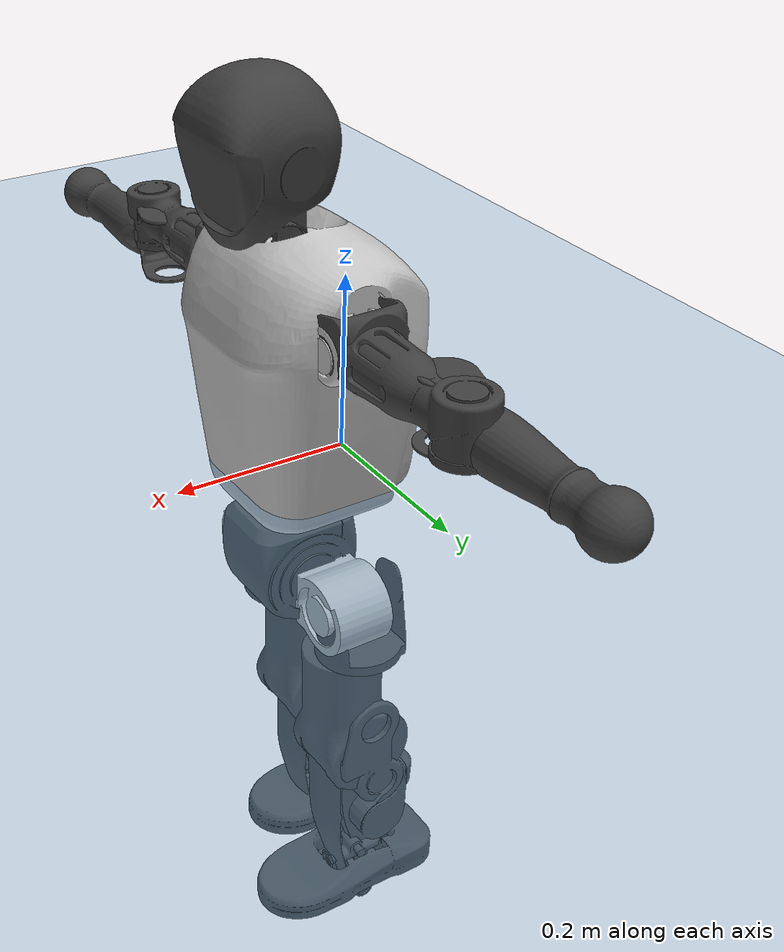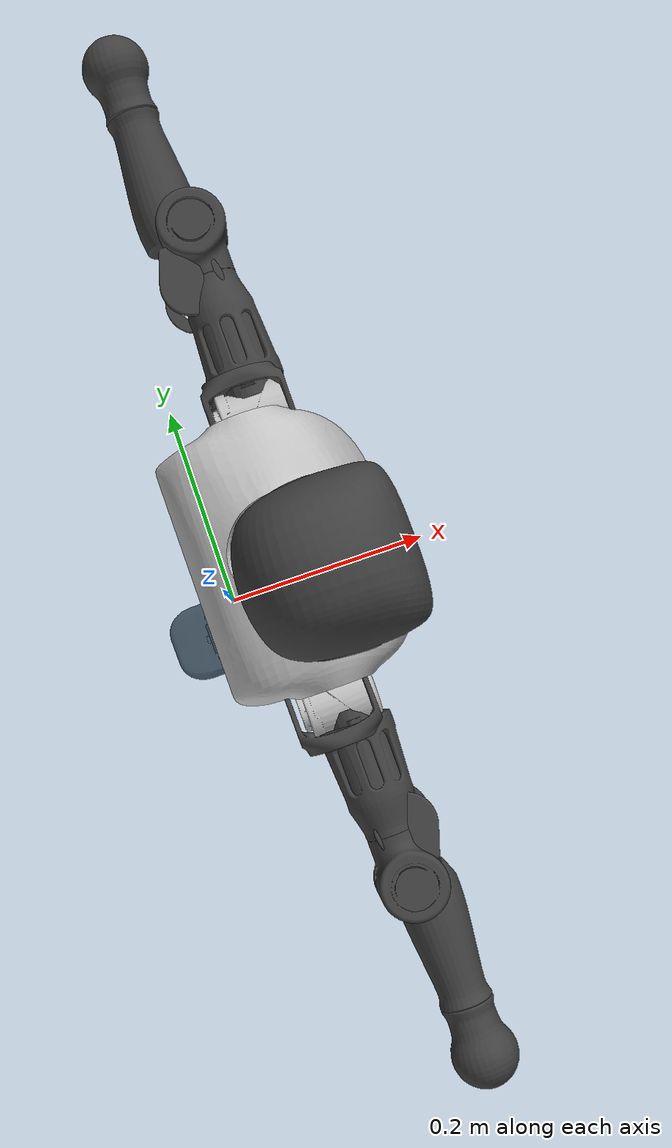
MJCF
<mujoco model="T1">
  <compiler angle="radian" assetdir="assets" balanceinertia="true" inertiafromgeom="false"/>

  <option timestep="0.005" density="1.2" viscosity="2e-05"/>

  <size nkey="1"/>

  <visual>
    <quality shadowsize="8192"/>
    <map shadowclip="0.5"/>
  </visual>

  <default>
    <default class="/">
      <joint armature="0.01" damping="0.01" frictionloss="0.1"/>
      <geom contype="0" conaffinity="0" group="1" solref="-1000 -80"/>
      <site size="0.01 0.005 0.005" group="5"/>
      <general forcelimited="true" biastype="affine" gainprm="25" biasprm="0 -25 -0.6"/>
      <default class="t1">
        <geom rgba="0.25 0.25 0.25 1"/>
        <default class="visual">
          <geom type="mesh" group="2"/>
        </default>
        <default class="collision">
          <geom group="3"/>
        </default>
        <default class="foot">
          <geom size="0.1115 0.05 0.015" type="box" condim="6" group="4" priority="1" solimp="0.015 1 0.015"/>
        </default>
        <default class="reward_collision_sphere">
          <geom group="5" rgba="1 0 0 1"/>
        </default>
      </default>
    </default>
  </default>

  <asset>
    <texture type="skybox" colorspace="auto" name="//unnamed_texture_0" builtin="gradient" rgb1="0.95 0.95 0.95" rgb2="0.95 0.95 0.95" width="100" height="600"/>
    <texture type="2d" colorspace="auto" name="texplane" builtin="checker" rgb1="0.345 0.575 0.748" rgb2="0.345 0.575 0.748" markrgb="1 1 1" width="512" height="512"/>
    <material name="MatPlane" class="/" texture="texplane" texuniform="true" texrepeat="2 2" specular="0.9"/>
    <mesh name="Trunk" class="/" file="Trunk.stl"/>
    <mesh name="H1" class="/" file="H1.stl"/>
    <mesh name="H2" class="/" file="H2.stl"/>
    <mesh name="AL1" class="/" file="AL1.stl"/>
    <mesh name="AL2" class="/" file="AL2.stl"/>
    <mesh name="AL3" class="/" file="AL3.stl"/>
    <mesh name="left_hand_link" class="/" file="left_hand_link.stl"/>
    <mesh name="AR1" class="/" file="AR1.stl"/>
    <mesh name="AR2" class="/" file="AR2.stl"/>
    <mesh name="AR3" class="/" file="AR3.stl"/>
    <mesh name="right_hand_link" class="/" file="right_hand_link.stl"/>
    <mesh name="Waist" class="/" file="Waist.stl"/>
    <mesh name="Hip_Pitch_Left" class="/" file="Hip_Pitch_Left.stl"/>
    <mesh name="Hip_Roll_Left" class="/" file="Hip_Roll_Left.stl"/>
    <mesh name="Hip_Yaw_Left" class="/" file="Hip_Yaw_Left.stl"/>
    <mesh name="Shank_Left" class="/" file="Shank_Left.stl"/>
    <mesh name="Ankle_Cross_Left" class="/" file="Ankle_Cross_Left.stl"/>
    <mesh name="left_foot_link" class="/" file="left_foot_link.stl"/>
    <mesh name="Hip_Pitch_Right" class="/" file="Hip_Pitch_Right.stl"/>
    <mesh name="Hip_Roll_Right" class="/" file="Hip_Roll_Right.stl"/>
    <mesh name="Hip_Yaw_Right" class="/" file="Hip_Yaw_Right.stl"/>
    <mesh name="Shank_Right" class="/" file="Shank_Right.stl"/>
    <mesh name="Ankle_Cross_Right" class="/" file="Ankle_Cross_Right.stl"/>
    <mesh name="right_foot_link" class="/" file="right_foot_link.stl"/>
  </asset>

  <worldbody>
    <geom name="floor" class="/" size="100 100 0.125" type="plane" group="0" material="MatPlane"/>
    <light name="toplight_shadow" class="/" pos="0 0 5" dir="0.0990148 0.0990148 -0.990148" type="directional" ambient="0.04 0.04 0.04" diffuse="0.55 0.55 0.55" specular="0.12 0.12 0.12"/>
    <light name="toplight_fill" class="/" pos="0 0 5" dir="0.0990148 0.0990148 -0.990148" type="directional" castshadow="false" ambient="0.04 0.04 0.04" diffuse="0.3 0.3 0.3" specular="0.08 0.08 0.08"/>
    <body name="trunk" childclass="t1" pos="0.00461951 0.0117414 0.00375499" quat="0.999962 0.00309657 0.00637569 0.00516408">
      <inertial pos="0.0733875 0.0154099 0.0944136" quat="0.999607 0.0187261 -0.0132142 -0.0161121" mass="8.45315" diaginertia="0.126505 0.019536 0.0198979"/>
      <joint name="//unnamed_joint_0" type="free" armature="0" damping="0" frictionloss="0"/>
      <geom name="//unnamed_geom_1" class="visual" rgba="0.76 0.76 0.76 1" mesh="Trunk"/>
      <geom name="//unnamed_geom_2" class="collision" size="0.0650201 0.0866935 0.13004" pos="0.0636638 0 0.0948609" type="box"/>
      <geom name="//unnamed_geom_3" class="reward_collision_sphere" size="0.0996975" pos="0.0636638 0 0.0790508"/>
      <geom name="//unnamed_geom_4" class="reward_collision_sphere" size="0.013004" pos="0.0636638 0.0636848 0"/>
      <geom name="//unnamed_geom_5" class="reward_collision_sphere" size="0.013004" pos="0.0636638 -0.0636848 0"/>
      <geom name="//unnamed_geom_6" class="reward_collision_sphere" size="0.013004" pos="0.0636638 0.080168 0.142291"/>
      <geom name="//unnamed_geom_7" class="reward_collision_sphere" size="0.013004" pos="0.0636638 -0.080168 0.142291"/>
      <site name="imu" pos="-0.0700052 -0.0398084 0.070159" size="0.00866935"/>
      <camera name="track" pos="0 -1.49847 0" quat="0.707107 0.707107 0 0" mode="trackcom"/>
      <camera name="ego_camera" pos="0.12945 0 0.332013" quat="-0.5 -0.5 0.5 0.5"/>
      <body name="H1" pos="0.0762241 -0.011467 0.183526" quat="0.999986 -0.00186373 0.00339255 0.00357806">
        <inertial pos="0.0117356 -0.0193817 0.0341613" quat="0.763056 -0.053996 -0.074329 0.63977" mass="0.294918" diaginertia="0.000333475 5.74909e-05 6.73926e-05"/>
        <joint name="AAHead_yaw" pos="0 0 0" axis="0.0853565 -0.016331 0.996217" range="-1.39545 1.71153" armature="0.0138674" damping="0" frictionloss="0.0973829"/>
        <geom name="//unnamed_geom_8" class="visual" mesh="H1"/>
        <body name="H2" pos="-0.0137518 -0.0176972 0.0473125" quat="0.999994 0.00280747 0.0020176 0.000456682">
          <inertial pos="0.0104599 -0.015912 0.0815785" quat="0.986654 0.0920241 -0.077201 -0.109937" mass="0.425214" diaginertia="0.00232357 0.000429876 0.000553768"/>
          <joint name="Head_pitch" pos="0 0 0" axis="-0.0522749 -0.998606 -0.00734892" range="-1.13824 0.331008" armature="0.0164515" damping="0" frictionloss="0.00183576"/>
          <geom name="//unnamed_geom_9" class="visual" mesh="H2"/>
          <geom name="//unnamed_geom_10" class="collision" size="0.0693548" pos="0.0106106 0 0.0869558"/>
          <geom name="//unnamed_geom_11" class="reward_collision_sphere" size="0.0780241" pos="0.0212213 0 0.0790508"/>
        </body>
      </body>
      <body name="AL1" pos="0.0719381 0.0746198 0.191247" quat="1 0.000492563 0.000106978 0.000500325">
        <inertial pos="0.0171719 0.0278477 0.00761504" quat="0.513535 0.513828 -0.488542 0.48331" mass="0.391733" diaginertia="0.00191719 0.000339045 0.000116343"/>
        <joint name="Left_Shoulder_Pitch" pos="0 0 0" axis="-0.0531844 0.995964 0.0723023" range="-3.36635 1.45708" armature="0.0115964" damping="0" frictionloss="0.0730146"/>
        <geom name="//unnamed_geom_12" class="visual" rgba="0.76 0.76 0.76 1" mesh="AL1"/>
        <body name="AL2" pos="-0.00594428 0.0304437 0.0140945" quat="1 0.000435731 -0.000473413 -0.000149932">
          <inertial pos="-0.00782632 0.0403118 0.0158577" quat="0.463279 0.468373 -0.493959 0.567453" mass="0.0867621" diaginertia="0.000525859 8.03546e-05 5.21867e-05"/>
          <joint name="Left_Shoulder_Roll" pos="0 0 0" axis="-0.998324 0.0510461 0.0272727" range="-1.48737 1.6116" armature="0.00935512" damping="0.011306" frictionloss="0.100054"/>
          <geom name="//unnamed_geom_13" class="visual" mesh="AL2"/>
          <body name="AL3" pos="0.00667646 0.0467027 -0.0105554" quat="0.999998 0.00126883 0.00135032 0.00124523">
            <inertial pos="0.0126094 0.0615791 -0.00614844" quat="0.745415 0.66309 -0.0628905 -0.0267099" mass="0.694705" diaginertia="0.0161375 0.00321045 0.00025986"/>
            <joint name="Left_Elbow_Pitch" pos="0 0 0" axis="0.0230172 -0.999669 0.0114765" range="-2.085 2.40598" armature="0.00968988" damping="0" frictionloss="0.0067355"/>
            <geom name="//unnamed_geom_14" class="visual" mesh="AL3"/>
            <geom name="//unnamed_geom_15" class="collision" size="0.026008 0.0650201" pos="0 0.0374617 0" quat="0.707105 0.707108 0 0" type="cylinder"/>
            <geom name="//unnamed_geom_16" class="reward_collision_sphere" size="0.0312096"/>
            <body name="left_hand_link" pos="-0.0164973 0.0967625 -0.0133849" quat="0.999994 0.00279353 -0.00164737 -0.00156068">
              <inertial pos="-0.0167647 0.096015 0.01662" quat="0.70789 0.704727 0.0211949 -0.0424549" mass="0.206485" diaginertia="0.0107268 0.00176612 5.47553e-05"/>
              <joint name="Left_Elbow_Yaw" pos="0 0 0" axis="-0.0159944 0.0225328 0.999618" stiffness="0.0560844" range="-2.48821 0.161625" armature="0.00229328" damping="0" frictionloss="0.0850726"/>
              <geom name="//unnamed_geom_17" class="visual" mesh="left_hand_link"/>
              <geom name="//unnamed_geom_18" class="collision" size="0.026008 0.0758568" pos="0 0.0974003 0" quat="0.707105 0.707108 0 0" type="cylinder"/>
              <geom name="//unnamed_geom_19" class="reward_collision_sphere" size="0.0433467"/>
              <geom name="//unnamed_geom_20" class="reward_collision_sphere" size="0.0303427" pos="0 0.0824157 0"/>
              <geom name="//unnamed_geom_21" class="reward_collision_sphere" size="0.0303427" pos="0 0.161085 0"/>
            </body>
          </body>
        </body>
      </body>
      <body name="AR1" pos="0.0577672 -0.086415 0.175007" quat="0.999953 0.0093124 -0.00262949 -0.000353509">
        <inertial pos="0.00162092 -0.023131 -0.0108844" quat="0.500119 0.502136 -0.514601 0.482624" mass="0.261786" diaginertia="0.00168955 0.000252404 6.65155e-05"/>
        <joint name="Right_Shoulder_Pitch" pos="0 0 0" axis="-0.0381632 -0.99912 0.0173995" range="-1.48757 3.25223" armature="0.01288" damping="0.0200716" frictionloss="0.13434"/>
        <geom name="//unnamed_geom_22" class="visual" rgba="0.76 0.76 0.76 1" mesh="AR1"/>
        <body name="AR2" pos="-0.00960645 -0.027904 0.0178453" quat="0.999969 0.00241669 0.00189524 0.00719888">
          <inertial pos="0.0143359 -0.0384623 0.00916259" quat="0.542286 0.461024 -0.467503 0.524237" mass="0.124909" diaginertia="0.000642098 8.13791e-05 6.6401e-05"/>
          <joint name="Right_Shoulder_Roll" pos="0 0 0" axis="-0.997703 0.00867339 -0.0671898" stiffness="0.0677533" range="-1.51476 1.80092" armature="0.00865604" damping="0.0873853" frictionloss="0.114068"/>
          <geom name="//unnamed_geom_23" class="visual" mesh="AR2"/>
          <body name="AR3" pos="0.0129778 -0.042268 -0.0096541" quat="0.999966 0.00639204 0.00523927 -0.000746495">
            <inertial pos="-0.0195211 -0.0685614 -0.0105506" quat="0.694376 0.718914 -0.0104666 -0.0299164" mass="0.619358" diaginertia="0.0118412 0.00260033 0.000168299"/>
            <joint name="Right_Elbow_Pitch" pos="0 0 0" axis="-0.00720719 0.9981 0.0611847" stiffness="0.0351034" range="-2.06779 2.66855" armature="0.00591948" damping="0.0087336" frictionloss="0.0363578"/>
            <geom name="//unnamed_geom_24" class="visual" mesh="AR3"/>
            <geom name="//unnamed_geom_25" class="collision" size="0.026008 0.0650201" pos="0 -0.0374617 0" quat="0.707105 0.707108 0 0" type="cylinder"/>
            <geom name="//unnamed_geom_26" class="reward_collision_sphere" size="0.0312096"/>
            <body name="right_hand_link" pos="0.0116395 -0.0967649 -0.0162347" quat="0.999969 0.00132905 -0.0059535 -0.00491159">
              <inertial pos="-0.0184978 -0.0917163 0.0172093" quat="0.706847 0.707216 0.000481828 -0.0145424" mass="0.234642" diaginertia="0.0169582 0.00277773 6.41191e-05"/>
              <joint name="Right_Elbow_Yaw" pos="0 0 0" axis="0.00958147 0.0133551 0.999865" stiffness="0.0364384" range="-0.0877869 2.77116" armature="0.0124999" damping="0" frictionloss="0.0770551"/>
              <geom name="//unnamed_geom_27" class="visual" mesh="right_hand_link"/>
              <geom name="//unnamed_geom_28" class="collision" size="0.026008 0.0758568" pos="0 -0.0974003 0" quat="0.707105 0.707108 0 0" type="cylinder"/>
              <geom name="//unnamed_geom_29" class="reward_collision_sphere" size="0.0433467"/>
              <geom name="//unnamed_geom_30" class="reward_collision_sphere" size="0.0303427" pos="0 -0.0824157 0"/>
              <geom name="//unnamed_geom_31" class="reward_collision_sphere" size="0.0303427" pos="0 -0.161085 0"/>
            </body>
          </body>
        </body>
      </body>
      <body name="Waist" pos="0.0801736 0.0168082 -0.103207" quat="0.999999 -0.000952045 0.00041129 0.000288407">
        <inertial pos="-0.00547496 -0.0153406 0.0124437" quat="0.973381 -0.0279128 -0.222489 -0.0474212" mass="2.34289" diaginertia="0.00934129 0.00167991 0.00202042"/>
        <joint name="Waist" pos="0 0 0" axis="0.00771527 -0.0488869 0.998775" stiffness="0.0538608" range="-1.34908 1.77923" armature="0.00679712" damping="0.103553" frictionloss="0.0318337"/>
        <geom name="//unnamed_geom_32" class="visual" mesh="Waist"/>
        <body name="Hip_Pitch_Left" pos="-0.0126611 0.0884732 -0.000783477" quat="0.999999 -0.00140877 -0.000881361 4.34904e-05">
          <inertial pos="0.0114576 -0.0116748 0.00263429" quat="0.973911 0.218114 0.0578925 0.0239251" mass="0.707615" diaginertia="0.002763 0.000388913 0.00044886"/>
          <joint name="Left_Hip_Pitch" pos="0 0 0" axis="-0.0237333 0.998612 -0.047016" range="-1.94233 1.24301" armature="0.0128839" damping="0.0786369" frictionloss="0.0699073"/>
          <geom name="//unnamed_geom_33" class="visual" rgba="0.76 0.76 0.76 1" mesh="Hip_Pitch_Left"/>
          <body name="Hip_Roll_Left" pos="-0.0170415 0.00453561 -0.00264241" quat="0.999995 0.00199295 0.00202843 -0.00132387">
            <inertial pos="0.00905341 0.00151982 -0.026626" quat="0.70366 -0.0350998 -0.0169582 0.709466" mass="0.175923" diaginertia="0.00150147 0.000340632 0.000152934"/>
            <joint name="Left_Hip_Roll" pos="0 0 0" axis="-0.998504 0.00260725 0.054614" stiffness="0.0851776" range="-1.35454 -0.149887" armature="0.00638371" damping="0" frictionloss="0.0606136"/>
            <geom name="//unnamed_geom_34" class="visual" mesh="Hip_Roll_Left"/>
            <geom name="//unnamed_geom_35" class="reward_collision_sphere" size="0.0476814"/>
            <body name="Hip_Yaw_Left" pos="0.00916779 -0.0179645 -0.0829992" quat="1 -0.000115534 -4.05775e-05 -0.000430699">
              <inertial pos="0.00468498 0.00432462 -0.0804493" quat="0.679412 -0.0106764 -0.106803 0.725864" mass="1.43455" diaginertia="0.0260457 0.0062661 0.000583471"/>
              <joint name="Left_Hip_Yaw" pos="0 0 0" axis="0.000438795 3.22599e-05 -1" stiffness="0.0142827" range="-0.872427 0.612465" armature="0.00257356" damping="0.113617" frictionloss="0.0747556"/>
              <geom name="//unnamed_geom_36" class="visual" mesh="Hip_Yaw_Left"/>
              <geom name="//unnamed_geom_37" class="collision" size="0.0433467 0.0693548" type="cylinder"/>
              <body name="Shank_Left" pos="-0.0141359 0.00630888 -0.0891023" quat="0.999984 0.00482634 0.00135421 0.00261667">
                <inertial pos="-0.00547916 0.00501691 -0.0823992" quat="0.998772 0.0122761 -0.0365359 0.0311157" mass="1.03667" diaginertia="0.0434426 0.010693 0.000780686"/>
                <joint name="Left_Knee_Pitch" pos="0 0 0" axis="0.0021761 0.999962 0.00844245" range="-0.251751 2.29499" armature="0.0101818" damping="0.0503052" frictionloss="0.125767"/>
                <geom name="//unnamed_geom_38" class="visual" mesh="Shank_Left"/>
                <geom name="//unnamed_geom_39" class="collision" size="0.0433467 0.0650201" pos="0 0 -0.0948609" type="cylinder"/>
                <geom name="//unnamed_geom_40" class="reward_collision_sphere" size="0.0563508"/>
                <body name="Ankle_Cross_Left" pos="0.00844148 0.0071199 -0.206333" quat="0.999992 -0.000286239 0.00404242 -0.000135606">
                  <inertial pos="0.0136059 -0.017544 -0.00523955" quat="0.449939 0.556495 0.548171 0.432872" mass="0.0543845" diaginertia="3.20289e-05 7.18147e-06 3.21319e-06"/>
                  <joint name="Left_Ankle_Pitch" pos="0 0 0" axis="0.0630963 0.996916 0.0466537" range="-0.602323 0.189892" armature="0.0155927" damping="0" frictionloss="0.0321636"/>
                  <geom name="//unnamed_geom_41" class="visual" mesh="Ankle_Cross_Left"/>
                  <body name="left_foot_link" pos="-0.00372728 -0.0129352 -0.0248866" quat="0.999957 -0.00362647 0.00244717 -0.00820891">
                    <inertial pos="0.0172236 -0.00275921 0.00292657" quat="-0.0527906 0.633105 0.0253254 0.771849" mass="0.552576" diaginertia="0.00325351 0.000539247 0.000579153"/>
                    <joint name="Left_Ankle_Roll" pos="0 0 0" axis="-1 0.000272772 0.00034543" stiffness="0.0817654" range="-0.102173 0.793377" armature="0.00273013" damping="0.0225926" frictionloss="0.161884"/>
                    <geom name="//unnamed_geom_42" class="visual" mesh="left_foot_link"/>
                    <geom name="left_foot" class="foot" size="0.114306 0.0652923 0.0150489" pos="0.0106106 0 -0.0118576"/>
                    <geom name="//unnamed_geom_44" class="reward_collision_sphere" size="0.0450806" pos="0.0106106 0 -0.0118576"/>
                    <geom name="//unnamed_geom_45" class="reward_collision_sphere" size="0.026008" pos="0.100801 -0.0172324 -0.0118576"/>
                    <geom name="//unnamed_geom_46" class="reward_collision_sphere" size="0.026008" pos="-0.0742744 -0.0172324 -0.0118576"/>
                    <site name="left_foot" class="foot" pos="0.0106106 0 -0.0118576" size="0.00866935"/>
                  </body>
                </body>
              </body>
            </body>
          </body>
        </body>
        <body name="Hip_Pitch_Right" pos="-0.00571577 -0.0648415 0.00195908" quat="0.999966 0.00316039 -0.007133 -0.00269088">
          <inertial pos="-0.0102433 0.0204758 -0.0273191" quat="0.976435 -0.212653 0.0229452 -0.0287479" mass="0.646108" diaginertia="0.00223743 0.000250132 0.000343047"/>
          <joint name="Right_Hip_Pitch" pos="0 0 0" axis="-0.00867825 -0.999922 -0.0090273" stiffness="0.0272225" range="-1.36925 1.67789" armature="0.00198941" damping="0" frictionloss="0.133193"/>
          <geom name="//unnamed_geom_47" class="visual" rgba="0.76 0.76 0.76 1" mesh="Hip_Pitch_Right"/>
          <body name="Hip_Roll_Right" pos="-0.0182577 0.0162836 -0.00286125" quat="0.999995 -0.00128759 -0.00303467 -7.83378e-05">
            <inertial pos="-0.00835852 -0.0101493 -0.0568043" quat="0.7193 -0.0187508 -0.0154494 0.694274" mass="0.164953" diaginertia="0.00193796 0.000245406 0.000139814"/>
            <joint name="Right_Hip_Roll" pos="0 0 0" axis="-0.998526 -0.0523933 0.0141551" range="-0.237081 1.94607" armature="0.00629406" damping="0.100869" frictionloss="0.16522"/>
            <geom name="//unnamed_geom_48" class="visual" mesh="Hip_Roll_Right"/>
            <geom name="//unnamed_geom_49" class="reward_collision_sphere" size="0.0476814"/>
            <body name="Hip_Yaw_Right" pos="-0.0177676 0.011439 -0.0774084" quat="0.999975 -0.000901619 -0.00318315 0.00623359">
              <inertial pos="-0.000852374 0.0135988 -0.0842266" quat="0.666276 -0.0766234 0.0230864 0.741399" mass="1.22757" diaginertia="0.0426842 0.00503107 0.000984572"/>
              <joint name="Right_Hip_Yaw" pos="0 0 0" axis="0.0892637 -0.0360686 -0.995355" range="-0.946105 1.07566" armature="0.0158637" damping="0.0334952" frictionloss="0.0626303"/>
              <geom name="//unnamed_geom_50" class="visual" mesh="Hip_Yaw_Right"/>
              <geom name="//unnamed_geom_51" class="collision" size="0.0433467 0.0693548" type="cylinder"/>
              <body name="Shank_Right" pos="-0.0328438 -0.00417582 -0.0977059" quat="0.999979 -0.0047547 -0.00409485 0.00171277">
                <inertial pos="-0.0181235 -0.00450992 -0.104882" quat="0.996492 -0.0763411 0.0232906 -0.0251674" mass="1.49889" diaginertia="0.0432357 0.00968027 0.000573695"/>
                <joint name="Right_Knee_Pitch" pos="0 0 0" axis="-0.00440147 -0.999989 0.00162715" stiffness="0.0920119" range="-2.28792 -0.273879" armature="0.00804757" damping="0" frictionloss="0.108419"/>
                <geom name="//unnamed_geom_52" class="visual" mesh="Shank_Right"/>
                <geom name="//unnamed_geom_53" class="collision" size="0.0433467 0.0650201" pos="0 0 -0.0948609" type="cylinder"/>
                <geom name="//unnamed_geom_54" class="reward_collision_sphere" size="0.0563508"/>
                <body name="Ankle_Cross_Right" pos="-0.00923944 -0.00272599 -0.207772" quat="0.999967 0.00778366 -0.0010665 0.00224647">
                  <inertial pos="0.00156971 -0.0153176 -0.00300408" quat="0.440015 0.553323 0.552549 0.441487" mass="0.0469805" diaginertia="4.96459e-05 6.33246e-06 4.23437e-06"/>
                  <joint name="Right_Ankle_Pitch" pos="0 0 0" axis="-0.0679179 -0.997569 -0.0155703" range="0.0432536 0.943776" armature="0.00742342" damping="0.0158304" frictionloss="0.115937"/>
                  <geom name="//unnamed_geom_55" class="visual" mesh="Ankle_Cross_Right"/>
                  <body name="right_foot_link" pos="-0.0151417 0.0054305 -0.0168856" quat="0.999998 0.00171855 -0.00103532 -0.000239151">
                    <inertial pos="-0.00011631 -0.0153019 -0.00929991" quat="-0.000593827 0.664895 -0.00733242 0.7469" mass="0.269898" diaginertia="0.00321773 0.00044077 0.000477251"/>
                    <joint name="Right_Ankle_Roll" pos="0 0 0" axis="-0.999119 -0.0401898 -0.0121011" range="-0.296976 0.689844" armature="0.00567285" damping="0.0159868" frictionloss="0.16697"/>
                    <geom name="//unnamed_geom_56" class="visual" mesh="right_foot_link"/>
                    <geom name="right_foot" class="foot" size="0.15515 0.0286531 0.0126026" pos="0.0106106 0 -0.0118576"/>
                    <geom name="//unnamed_geom_58" class="reward_collision_sphere" size="0.0346774"/>
                    <geom name="//unnamed_geom_59" class="reward_collision_sphere" size="0.026008" pos="0.0106106 0 -0.0118576"/>
                    <geom name="//unnamed_geom_60" class="reward_collision_sphere" size="0.026008" pos="0.100801 0.0172324 -0.0118576"/>
                    <geom name="//unnamed_geom_61" class="reward_collision_sphere" size="0.026008" pos="-0.0742744 0.0172324 -0.0118576"/>
                    <site name="right_foot" class="foot" pos="0.0106106 0 -0.0118576" size="0.00866935"/>
                  </body>
                </body>
              </body>
            </body>
          </body>
        </body>
      </body>
    </body>
  </worldbody>

  <contact>
    <pair class="/" geom1="floor" geom2="left_foot" name="//unnamed_contact_0"/>
    <pair class="/" geom1="floor" geom2="right_foot" name="//unnamed_contact_1"/>
  </contact>

  <actuator>
    <general name="AAHead_yaw" class="/" joint="AAHead_yaw" forcerange="-8.17263 8.17263" gainprm="31.8614" biasprm="0 -31.8614 -0.358901"/>
    <general name="Head_pitch" class="/" joint="Head_pitch" forcerange="-3.96852 3.96852" gainprm="31.8614" biasprm="0 -31.8614 -0.358901"/>
    <general name="Left_Shoulder_Pitch" class="/" joint="Left_Shoulder_Pitch" forcerange="-27.1403 27.1403" gainprm="31.8614" biasprm="0 -31.8614 -0.358901"/>
    <general name="Left_Shoulder_Roll" class="/" joint="Left_Shoulder_Roll" forcerange="-17.013 17.013" gainprm="31.8614" biasprm="0 -31.8614 -0.358901"/>
    <general name="Left_Elbow_Pitch" class="/" joint="Left_Elbow_Pitch" forcerange="-22.4404 22.4404" gainprm="31.8614" biasprm="0 -31.8614 -0.358901"/>
    <general name="Left_Elbow_Yaw" class="/" joint="Left_Elbow_Yaw" forcerange="-17.9591 17.9591" gainprm="31.8614" biasprm="0 -31.8614 -0.358901"/>
    <general name="Right_Shoulder_Pitch" class="/" joint="Right_Shoulder_Pitch" forcerange="-19.9627 19.9627" gainprm="31.8614" biasprm="0 -31.8614 -0.358901"/>
    <general name="Right_Shoulder_Roll" class="/" joint="Right_Shoulder_Roll" forcerange="-13.1413 13.1413" gainprm="31.8614" biasprm="0 -31.8614 -0.358901"/>
    <general name="Right_Elbow_Pitch" class="/" joint="Right_Elbow_Pitch" forcerange="-22.8459 22.8459" gainprm="31.8614" biasprm="0 -31.8614 -0.358901"/>
    <general name="Right_Elbow_Yaw" class="/" joint="Right_Elbow_Yaw" forcerange="-22.7789 22.7789" gainprm="31.8614" biasprm="0 -31.8614 -0.358901"/>
    <general name="Waist" class="/" joint="Waist" forcerange="-37.9008 37.9008" gainprm="31.8614" biasprm="0 -31.8614 -0.358901"/>
    <general name="Left_Hip_Pitch" class="/" joint="Left_Hip_Pitch" forcerange="-46.5384 46.5384" gainprm="31.8614" biasprm="0 -31.8614 -0.358901"/>
    <general name="Left_Hip_Roll" class="/" joint="Left_Hip_Roll" forcerange="-37.559 37.559" gainprm="31.8614" biasprm="0 -31.8614 -0.358901"/>
    <general name="Left_Hip_Yaw" class="/" joint="Left_Hip_Yaw" forcerange="-37.7412 37.7412" gainprm="31.8614" biasprm="0 -31.8614 -0.358901"/>
    <general name="Left_Knee_Pitch" class="/" joint="Left_Knee_Pitch" forcerange="-31.1632 31.1632" gainprm="31.8614" biasprm="0 -31.8614 -0.358901"/>
    <general name="Left_Ankle_Pitch" class="/" joint="Left_Ankle_Pitch" forcerange="-5.55341 5.55341" gainprm="31.8614" biasprm="0 -31.8614 -0.358901"/>
    <general name="Left_Ankle_Roll" class="/" joint="Left_Ankle_Roll" forcerange="-21.2125 21.2125" gainprm="31.8614" biasprm="0 -31.8614 -0.358901"/>
    <general name="Right_Hip_Pitch" class="/" joint="Right_Hip_Pitch" forcerange="-32.5751 32.5751" gainprm="31.8614" biasprm="0 -31.8614 -0.358901"/>
    <general name="Right_Hip_Roll" class="/" joint="Right_Hip_Roll" forcerange="-9.49113 9.49113" gainprm="31.8614" biasprm="0 -31.8614 -0.358901"/>
    <general name="Right_Hip_Yaw" class="/" joint="Right_Hip_Yaw" forcerange="-40.4398 40.4398" gainprm="31.8614" biasprm="0 -31.8614 -0.358901"/>
    <general name="Right_Knee_Pitch" class="/" joint="Right_Knee_Pitch" forcerange="-78.711 78.711" gainprm="31.8614" biasprm="0 -31.8614 -0.358901"/>
    <general name="Right_Ankle_Pitch" class="/" joint="Right_Ankle_Pitch" forcerange="-20.272 20.272" gainprm="31.8614" biasprm="0 -31.8614 -0.358901"/>
    <general name="Right_Ankle_Roll" class="/" joint="Right_Ankle_Roll" forcerange="-5.27397 5.27397" gainprm="31.8614" biasprm="0 -31.8614 -0.358901"/>
  </actuator>

  <sensor>
    <gyro site="imu" name="imu_angular_velocity"/>
    <velocimeter site="imu" name="imu_linear_velocity"/>
    <framelinvel objtype="site" objname="left_foot" name="left_foot_global_linear_velocity"/>
    <framelinvel objtype="site" objname="right_foot" name="right_foot_global_linear_velocity"/>
  </sensor>

  <keyframe>
    <key name="home" qpos="0 0 0.6385 1 0 0 0 0 0 0 1.4 0 -0.4 0 -1.4 0 0.4 0 -0.4 0 0 0.8 -0.4 0 0.4 0 0 -0.8 0.4 0"/>
  </keyframe>
</mujoco>
